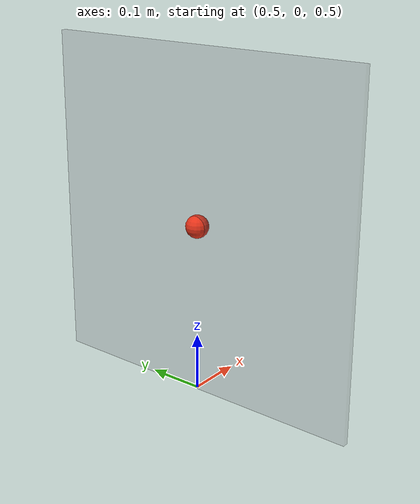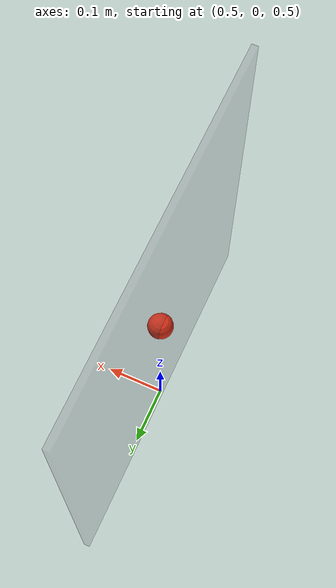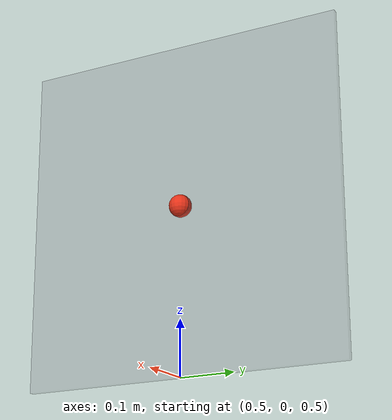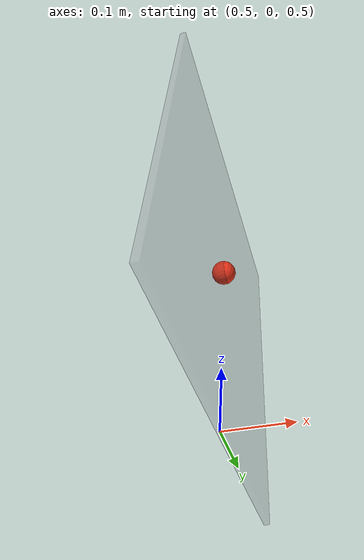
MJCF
<?xml version="1.0"?>
<mujoco>
    <compiler angle="radian"/>
    <option timestep="0.002"/>
    <size njmax="1000" nconmax="400"/>
    <asset>
        <texture type="skybox" builtin="gradient" rgb1="1 1 1" rgb2="0.6 0.8 1" width="256" height="256"/>
    </asset>
    <worldbody>
        <light name="scene_directional_light" directional="true" castshadow="false" cutoff="4" exponent="20"
               diffuse="1 1 1" specular="0 0 0" pos=".9 .3 2.5"/>
        <body name="target" pos="0.5 0.0 0.8">
            <geom name="target" type="sphere" size="0.02" rgba="0.9 0.2 0.1 1.0"/>
        </body>
        <body name="target-plane" pos="0.5 0.0 0.8">
            <geom name="target-plane" type="box" size="0.005 0.3 0.3" rgba="0.3 0.3 0.35 0.15"/>
        </body>
    </worldbody>
</mujoco>
